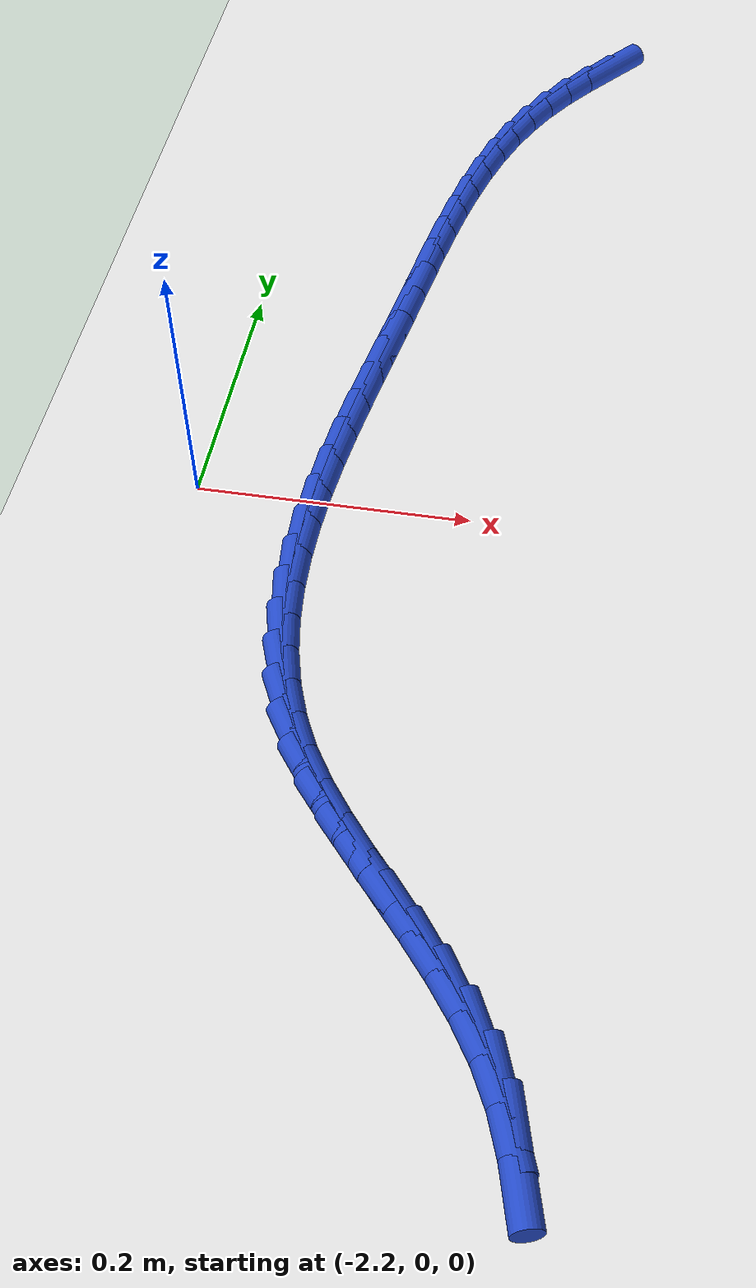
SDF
<sdf version="1.6">
 <world name="default">
  <model name="ground_plane">
   <static>1</static>
   <link name="link">
    <collision name="collision">
     <geometry><plane><normal>0 0 1</normal><size>100 100</size></plane></geometry>
     <surface><friction><ode><mu>100</mu><mu2>50</mu2></ode></friction></surface>
    </collision>
    <visual name="visual">
     <cast_shadows>0</cast_shadows>
     <geometry><plane><normal>0 0 1</normal><size>100 100</size></plane></geometry>
     <material>
      <script><uri>file://media/materials/scripts/gazebo.material</uri><name>Gazebo/WhiteGlow</name></script>
     </material>
    </visual>
   </link>
  </model>
  <model name="line">
   <link name="link_96">
    <pose>-1.9581758113095433 0.5508698142762366 0.01 0 1.57 0.8870853955643602</pose>
    <collision name="collision">
     <geometry><cylinder><radius>0.01</radius><length>0.08</length></cylinder></geometry>
    </collision>
    <visual name="visual">
     <material>
      <script><name>Gazebo/Blue</name><uri>file://media/materials/scripts/gazebo.material</uri></script>
     </material>
     <geometry><cylinder><radius>0.01</radius><length>0.08</length></cylinder></geometry>
    </visual>
   </link>
   <link name="link_97">
    <pose>-1.9758757008551513 0.5291472944053985 0.01 0 1.57 0.9357067175996127</pose>
    <collision name="collision">
     <geometry><cylinder><radius>0.01</radius><length>0.08</length></cylinder></geometry>
    </collision>
    <visual name="visual">
     <material>
      <script><name>Gazebo/Blue</name><uri>file://media/materials/scripts/gazebo.material</uri></script>
     </material>
     <geometry><cylinder><radius>0.01</radius><length>0.08</length></cylinder></geometry>
    </visual>
   </link>
   <link name="link_98">
    <pose>-1.9922959920699665 0.5068655471505116 0.01 0 1.57 0.9978937823005347</pose>
    <collision name="collision">
     <geometry><cylinder><radius>0.01</radius><length>0.08</length></cylinder></geometry>
    </collision>
    <visual name="visual">
     <material>
      <script><name>Gazebo/Blue</name><uri>file://media/materials/scripts/gazebo.material</uri></script>
     </material>
     <geometry><cylinder><radius>0.01</radius><length>0.08</length></cylinder></geometry>
    </visual>
   </link>
   <link name="link_99">
    <pose>-2.0071465699691315 0.48384393752091015 0.01 0 1.57 1.0725974394548579</pose>
    <collision name="collision">
     <geometry><cylinder><radius>0.01</radius><length>0.08</length></cylinder></geometry>
    </collision>
    <visual name="visual">
     <material>
      <script><name>Gazebo/Blue</name><uri>file://media/materials/scripts/gazebo.material</uri></script>
     </material>
     <geometry><cylinder><radius>0.01</radius><length>0.08</length></cylinder></geometry>
    </visual>
   </link>
   <link name="link_100">
    <pose>-2.0201632019851767 0.45991481563457653 0.01 0 1.57 1.1471839814776899</pose>
    <collision name="collision">
     <geometry><cylinder><radius>0.01</radius><length>0.08</length></cylinder></geometry>
    </collision>
    <visual name="visual">
     <material>
      <script><name>Gazebo/Blue</name><uri>file://media/materials/scripts/gazebo.material</uri></script>
     </material>
     <geometry><cylinder><radius>0.01</radius><length>0.08</length></cylinder></geometry>
    </visual>
   </link>
   <link name="link_101">
    <pose>-2.031372211600938 0.4350563024555601 0.01 0 1.57 1.213182689610502</pose>
    <collision name="collision">
     <geometry><cylinder><radius>0.01</radius><length>0.08</length></cylinder></geometry>
    </collision>
    <visual name="visual">
     <material>
      <script><name>Gazebo/Blue</name><uri>file://media/materials/scripts/gazebo.material</uri></script>
     </material>
     <geometry><cylinder><radius>0.01</radius><length>0.08</length></cylinder></geometry>
    </visual>
   </link>
   <link name="link_102">
    <pose>-2.0409825878626315 0.40933816155419867 0.01 0 1.57 1.269965993674583</pose>
    <collision name="collision">
     <geometry><cylinder><radius>0.01</radius><length>0.08</length></cylinder></geometry>
    </collision>
    <visual name="visual">
     <material>
      <script><name>Gazebo/Blue</name><uri>file://media/materials/scripts/gazebo.material</uri></script>
     </material>
     <geometry><cylinder><radius>0.01</radius><length>0.08</length></cylinder></geometry>
    </visual>
   </link>
   <link name="link_103">
    <pose>-2.0492061560994013 0.3828315794529955 0.01 0 1.57 1.3174473876385244</pose>
    <collision name="collision">
     <geometry><cylinder><radius>0.01</radius><length>0.08</length></cylinder></geometry>
    </collision>
    <visual name="visual">
     <material>
      <script><name>Gazebo/Blue</name><uri>file://media/materials/scripts/gazebo.material</uri></script>
     </material>
     <geometry><cylinder><radius>0.01</radius><length>0.08</length></cylinder></geometry>
    </visual>
   </link>
   <link name="link_104">
    <pose>-2.0562547416403874 0.35560774267445505 0.01 0 1.57 1.3558192131780582</pose>
    <collision name="collision">
     <geometry><cylinder><radius>0.01</radius><length>0.08</length></cylinder></geometry>
    </collision>
    <visual name="visual">
     <material>
      <script><name>Gazebo/Blue</name><uri>file://media/materials/scripts/gazebo.material</uri></script>
     </material>
     <geometry><cylinder><radius>0.01</radius><length>0.08</length></cylinder></geometry>
    </visual>
   </link>
   <link name="link_105">
    <pose>-2.0623401698147323 0.32773783774108034 0.01 0 1.57 1.38542464925822</pose>
    <collision name="collision">
     <geometry><cylinder><radius>0.01</radius><length>0.08</length></cylinder></geometry>
    </collision>
    <visual name="visual">
     <material>
      <script><name>Gazebo/Blue</name><uri>file://media/materials/scripts/gazebo.material</uri></script>
     </material>
     <geometry><cylinder><radius>0.01</radius><length>0.08</length></cylinder></geometry>
    </visual>
   </link>
   <link name="link_106">
    <pose>-2.0676742659515757 0.29929305117537575 0.01 0 1.57 1.4066614295665194</pose>
    <collision name="collision">
     <geometry><cylinder><radius>0.01</radius><length>0.08</length></cylinder></geometry>
    </collision>
    <visual name="visual">
     <material>
      <script><name>Gazebo/Blue</name><uri>file://media/materials/scripts/gazebo.material</uri></script>
     </material>
     <geometry><cylinder><radius>0.01</radius><length>0.08</length></cylinder></geometry>
    </visual>
   </link>
   <link name="link_107">
    <pose>-2.0724688553800608 0.2703445694998446 0.01 0 1.57 1.419917780522216</pose>
    <collision name="collision">
     <geometry><cylinder><radius>0.01</radius><length>0.08</length></cylinder></geometry>
    </collision>
    <visual name="visual">
     <material>
      <script><name>Gazebo/Blue</name><uri>file://media/materials/scripts/gazebo.material</uri></script>
     </material>
     <geometry><cylinder><radius>0.01</radius><length>0.08</length></cylinder></geometry>
    </visual>
   </link>
   <link name="link_108">
    <pose>-2.0769357634293284 0.24096357923699047 0.01 0 1.57 1.4255350837176197</pose>
    <collision name="collision">
     <geometry><cylinder><radius>0.01</radius><length>0.08</length></cylinder></geometry>
    </collision>
    <visual name="visual">
     <material>
      <script><name>Gazebo/Blue</name><uri>file://media/materials/scripts/gazebo.material</uri></script>
     </material>
     <geometry><cylinder><radius>0.01</radius><length>0.08</length></cylinder></geometry>
    </visual>
   </link>
   <link name="link_109">
    <pose>-2.081286815428518 0.21122126690931753 0.01 0 1.57 1.4237906389219697</pose>
    <collision name="collision">
     <geometry><cylinder><radius>0.01</radius><length>0.08</length></cylinder></geometry>
    </collision>
    <visual name="visual">
     <material>
      <script><name>Gazebo/Blue</name><uri>file://media/materials/scripts/gazebo.material</uri></script>
     </material>
     <geometry><cylinder><radius>0.01</radius><length>0.08</length></cylinder></geometry>
    </visual>
   </link>
   <link name="link_110">
    <pose>-2.0857338367067735 0.1811888190393291 0.01 0 1.57 1.417181414850975</pose>
    <collision name="collision">
     <geometry><cylinder><radius>0.01</radius><length>0.08</length></cylinder></geometry>
    </collision>
    <visual name="visual">
     <material>
      <script><name>Gazebo/Blue</name><uri>file://media/materials/scripts/gazebo.material</uri></script>
     </material>
     <geometry><cylinder><radius>0.01</radius><length>0.08</length></cylinder></geometry>
    </visual>
   </link>
   <link name="link_111">
    <pose>-2.09041708596897 0.15094205849736314 0.01 0 1.57 1.4152018193870985</pose>
    <collision name="collision">
     <geometry><cylinder><radius>0.01</radius><length>0.08</length></cylinder></geometry>
    </collision>
    <visual name="visual">
     <material>
      <script><name>Gazebo/Blue</name><uri>file://media/materials/scripts/gazebo.material</uri></script>
     </material>
     <geometry><cylinder><radius>0.01</radius><length>0.08</length></cylinder></geometry>
    </visual>
   </link>
   <link name="link_112">
    <pose>-2.095180377261493 0.12057601292363712 0.01 0 1.57 1.4202137347952972</pose>
    <collision name="collision">
     <geometry><cylinder><radius>0.01</radius><length>0.08</length></cylinder></geometry>
    </collision>
    <visual name="visual">
     <material>
      <script><name>Gazebo/Blue</name><uri>file://media/materials/scripts/gazebo.material</uri></script>
     </material>
     <geometry><cylinder><radius>0.01</radius><length>0.08</length></cylinder></geometry>
    </visual>
   </link>
   <link name="link_113">
    <pose>-2.099790779103971 0.0901906818144603 0.01 0 1.57 1.4322851072332323</pose>
    <collision name="collision">
     <geometry><cylinder><radius>0.01</radius><length>0.08</length></cylinder></geometry>
    </collision>
    <visual name="visual">
     <material>
      <script><name>Gazebo/Blue</name><uri>file://media/materials/scripts/gazebo.material</uri></script>
     </material>
     <geometry><cylinder><radius>0.01</radius><length>0.08</length></cylinder></geometry>
    </visual>
   </link>
   <link name="link_114">
    <pose>-2.1040153598989844 0.05988606467372346 0.01 0 1.57 1.451663254664725</pose>
    <collision name="collision">
     <geometry><cylinder><radius>0.01</radius><length>0.08</length></cylinder></geometry>
    </collision>
    <visual name="visual">
     <material>
      <script><name>Gazebo/Blue</name><uri>file://media/materials/scripts/gazebo.material</uri></script>
     </material>
     <geometry><cylinder><radius>0.01</radius><length>0.08</length></cylinder></geometry>
    </visual>
   </link>
   <link name="link_115">
    <pose>-2.1076211880491087 0.029762161005318845 0.01 0 1.57 1.4787698170864698</pose>
    <collision name="collision">
     <geometry><cylinder><radius>0.01</radius><length>0.08</length></cylinder></geometry>
    </collision>
    <visual name="visual">
     <material>
      <script><name>Gazebo/Blue</name><uri>file://media/materials/scripts/gazebo.material</uri></script>
     </material>
     <geometry><cylinder><radius>0.01</radius><length>0.08</length></cylinder></geometry>
    </visual>
   </link>
   <link name="link_116">
    <pose>-2.1103753319569254 -8.102968686240185e-05 0.01 0 1.57 1.5141906161627725</pose>
    <collision name="collision">
     <geometry><cylinder><radius>0.01</radius><length>0.08</length></cylinder></geometry>
    </collision>
    <visual name="visual">
     <material>
      <script><name>Gazebo/Blue</name><uri>file://media/materials/scripts/gazebo.material</uri></script>
     </material>
     <geometry><cylinder><radius>0.01</radius><length>0.08</length></cylinder></geometry>
    </visual>
   </link>
   <link name="link_117">
    <pose>-2.1120448600250117 -0.02954350789892954 0.01 0 1.57 1.5586520246102968</pose>
    <collision name="collision">
     <geometry><cylinder><radius>0.01</radius><length>0.08</length></cylinder></geometry>
    </collision>
    <visual name="visual">
     <material>
      <script><name>Gazebo/Blue</name><uri>file://media/materials/scripts/gazebo.material</uri></script>
     </material>
     <geometry><cylinder><radius>0.01</radius><length>0.08</length></cylinder></geometry>
    </visual>
   </link>
   <link name="link_118">
    <pose>-2.112396840655945 -0.058525274126989525 0.01 0 1.57 -1.528622268116091</pose>
    <collision name="collision">
     <geometry><cylinder><radius>0.01</radius><length>0.08</length></cylinder></geometry>
    </collision>
    <visual name="visual">
     <material>
      <script><name>Gazebo/Blue</name><uri>file://media/materials/scripts/gazebo.material</uri></script>
     </material>
     <geometry><cylinder><radius>0.01</radius><length>0.08</length></cylinder></geometry>
    </visual>
   </link>
   <link name="link_119">
    <pose>-2.1111983422523037 -0.08692632886715163 0.01 0 1.57 -1.4636372491875962</pose>
    <collision name="collision">
     <geometry><cylinder><radius>0.01</radius><length>0.08</length></cylinder></geometry>
    </collision>
    <visual name="visual">
     <material>
      <script><name>Gazebo/Blue</name><uri>file://media/materials/scripts/gazebo.material</uri></script>
     </material>
     <geometry><cylinder><radius>0.01</radius><length>0.08</length></cylinder></geometry>
    </visual>
   </link>
   <link name="link_120">
    <pose>-2.108216433216669 -0.11464667261552436 0.01 0 1.57 -1.387347084543055</pose>
    <collision name="collision">
     <geometry><cylinder><radius>0.01</radius><length>0.08</length></cylinder></geometry>
    </collision>
    <visual name="visual">
     <material>
      <script><name>Gazebo/Blue</name><uri>file://media/materials/scripts/gazebo.material</uri></script>
     </material>
     <geometry><cylinder><radius>0.01</radius><length>0.08</length></cylinder></geometry>
    </visual>
   </link>
   <link name="link_121">
    <pose>-2.103218181951615 -0.1415863058682162 0.01 0 1.57 -1.2995311785305668</pose>
    <collision name="collision">
     <geometry><cylinder><radius>0.01</radius><length>0.08</length></cylinder></geometry>
    </collision>
    <visual name="visual">
     <material>
      <script><name>Gazebo/Blue</name><uri>file://media/materials/scripts/gazebo.material</uri></script>
     </material>
     <geometry><cylinder><radius>0.01</radius><length>0.08</length></cylinder></geometry>
    </visual>
   </link>
   <link name="link_122">
    <pose>-2.0959706568597225 -0.1676452291213362 0.01 0 1.57 -1.2006987515562726</pose>
    <collision name="collision">
     <geometry><cylinder><radius>0.01</radius><length>0.08</length></cylinder></geometry>
    </collision>
    <visual name="visual">
     <material>
      <script><name>Gazebo/Blue</name><uri>file://media/materials/scripts/gazebo.material</uri></script>
     </material>
     <geometry><cylinder><radius>0.01</radius><length>0.08</length></cylinder></geometry>
    </visual>
   </link>
   <link name="link_123">
    <pose>-2.0862409263435704 -0.1927234428709917 0.01 0 1.57 -1.092426177666422</pose>
    <collision name="collision">
     <geometry><cylinder><radius>0.01</radius><length>0.08</length></cylinder></geometry>
    </collision>
    <visual name="visual">
     <material>
      <script><name>Gazebo/Blue</name><uri>file://media/materials/scripts/gazebo.material</uri></script>
     </material>
     <geometry><cylinder><radius>0.01</radius><length>0.08</length></cylinder></geometry>
    </visual>
   </link>
   <link name="link_124">
    <pose>-2.0737970120260285 -0.21672137999701563 0.01 0 1.57 -0.9871279708148253</pose>
    <collision name="collision">
     <geometry><cylinder><radius>0.01</radius><length>0.08</length></cylinder></geometry>
    </collision>
    <visual name="visual">
     <material>
      <script><name>Gazebo/Blue</name><uri>file://media/materials/scripts/gazebo.material</uri></script>
     </material>
     <geometry><cylinder><radius>0.01</radius><length>0.08</length></cylinder></geometry>
    </visual>
   </link>
   <link name="link_125">
    <pose>-2.058653523191849 -0.23965132631854175 0.01 0 1.57 -0.9086593959951932</pose>
    <collision name="collision">
     <geometry><cylinder><radius>0.01</radius><length>0.08</length></cylinder></geometry>
    </collision>
    <visual name="visual">
     <material>
      <script><name>Gazebo/Blue</name><uri>file://media/materials/scripts/gazebo.material</uri></script>
     </material>
     <geometry><cylinder><radius>0.01</radius><length>0.08</length></cylinder></geometry>
    </visual>
   </link>
   <link name="link_126">
    <pose>-2.041398890343728 -0.26178585476465327 0.01 0 1.57 -0.858455662096106</pose>
    <collision name="collision">
     <geometry><cylinder><radius>0.01</radius><length>0.08</length></cylinder></geometry>
    </collision>
    <visual name="visual">
     <material>
      <script><name>Gazebo/Blue</name><uri>file://media/materials/scripts/gazebo.material</uri></script>
     </material>
     <geometry><cylinder><radius>0.01</radius><length>0.08</length></cylinder></geometry>
    </visual>
   </link>
   <link name="link_127">
    <pose>-2.022702988753618 -0.2834344818680272 0.01 0 1.57 -0.8343324402039474</pose>
    <collision name="collision">
     <geometry><cylinder><radius>0.01</radius><length>0.08</length></cylinder></geometry>
    </collision>
    <visual name="visual">
     <material>
      <script><name>Gazebo/Blue</name><uri>file://media/materials/scripts/gazebo.material</uri></script>
     </material>
     <geometry><cylinder><radius>0.01</radius><length>0.08</length></cylinder></geometry>
    </visual>
   </link>
   <link name="link_128">
    <pose>-2.0032356936934694 -0.3049067241613425 0.01 0 1.57 -0.8348199616858903</pose>
    <collision name="collision">
     <geometry><cylinder><radius>0.01</radius><length>0.08</length></cylinder></geometry>
    </collision>
    <visual name="visual">
     <material>
      <script><name>Gazebo/Blue</name><uri>file://media/materials/scripts/gazebo.material</uri></script>
     </material>
     <geometry><cylinder><radius>0.01</radius><length>0.08</length></cylinder></geometry>
    </visual>
   </link>
   <link name="link_129">
    <pose>-1.9836668804352358 -0.3265120981772772 0.01 0 1.57 -0.8595052975661128</pose>
    <collision name="collision">
     <geometry><cylinder><radius>0.01</radius><length>0.08</length></cylinder></geometry>
    </collision>
    <visual name="visual">
     <material>
      <script><name>Gazebo/Blue</name><uri>file://media/materials/scripts/gazebo.material</uri></script>
     </material>
     <geometry><cylinder><radius>0.01</radius><length>0.08</length></cylinder></geometry>
    </visual>
   </link>
   <link name="link_130">
    <pose>-1.9646664242508693 -0.3485601204485097 0.01 0 1.57 -0.9089681022972401</pose>
    <collision name="collision">
     <geometry><cylinder><radius>0.01</radius><length>0.08</length></cylinder></geometry>
    </collision>
    <visual name="visual">
     <material>
      <script><name>Gazebo/Blue</name><uri>file://media/materials/scripts/gazebo.material</uri></script>
     </material>
     <geometry><cylinder><radius>0.01</radius><length>0.08</length></cylinder></geometry>
    </visual>
   </link>
   <link name="link_131">
    <pose>-1.9469042004123218 -0.3713603075077189 0.01 0 1.57 -0.9843561394557979</pose>
    <collision name="collision">
     <geometry><cylinder><radius>0.01</radius><length>0.08</length></cylinder></geometry>
    </collision>
    <visual name="visual">
     <material>
      <script><name>Gazebo/Blue</name><uri>file://media/materials/scripts/gazebo.material</uri></script>
     </material>
     <geometry><cylinder><radius>0.01</radius><length>0.08</length></cylinder></geometry>
    </visual>
   </link>
   <link name="link_132">
    <pose>-1.9310500841915452 -0.39522217588758163 0.01 0 1.57 -1.0863880887117086</pose>
    <collision name="collision">
     <geometry><cylinder><radius>0.01</radius><length>0.08</length></cylinder></geometry>
    </collision>
    <visual name="visual">
     <material>
      <script><name>Gazebo/Blue</name><uri>file://media/materials/scripts/gazebo.material</uri></script>
     </material>
     <geometry><cylinder><radius>0.01</radius><length>0.08</length></cylinder></geometry>
    </visual>
   </link>
   <link name="link_133">
    <pose>-1.9177722435402444 -0.42045433953218814 0.01 0 1.57 -1.1985998933821502</pose>
    <collision name="collision">
     <geometry><cylinder><radius>0.01</radius><length>0.08</length></cylinder></geometry>
    </collision>
    <visual name="visual">
     <material>
      <script><name>Gazebo/Blue</name><uri>file://media/materials/scripts/gazebo.material</uri></script>
     </material>
     <geometry><cylinder><radius>0.01</radius><length>0.08</length></cylinder></geometry>
    </visual>
   </link>
   <link name="link_134">
    <pose>-1.907347200558816 -0.4471583656545684 0.01 0 1.57 -1.2845496479250111</pose>
    <collision name="collision">
     <geometry><cylinder><radius>0.01</radius><length>0.08</length></cylinder></geometry>
    </collision>
    <visual name="visual">
     <material>
      <script><name>Gazebo/Blue</name><uri>file://media/materials/scripts/gazebo.material</uri></script>
     </material>
     <geometry><cylinder><radius>0.01</radius><length>0.08</length></cylinder></geometry>
    </visual>
   </link>
  </model>
 </world>
</sdf>
